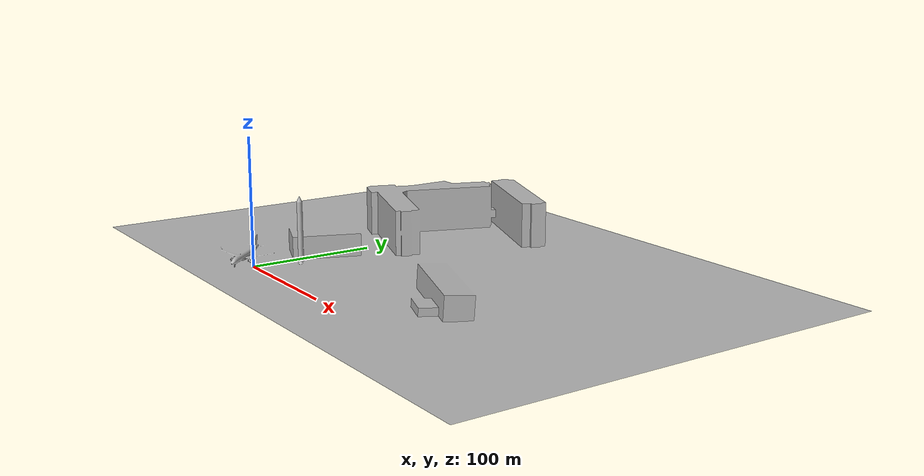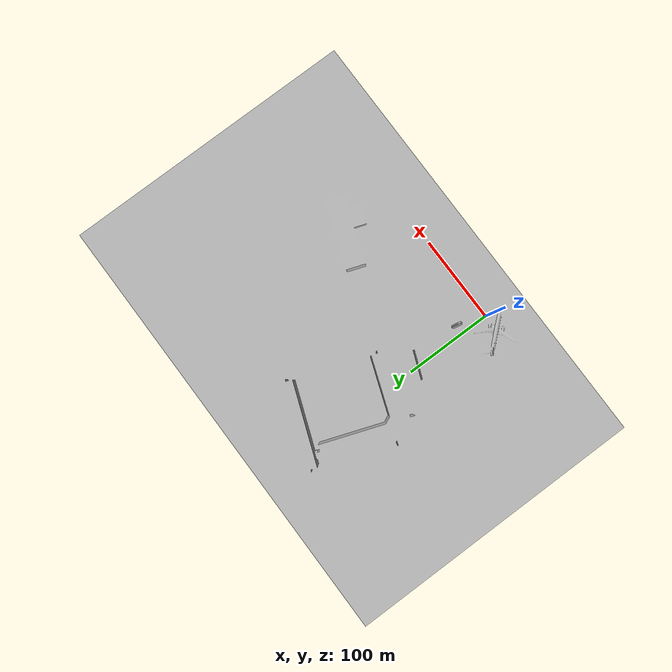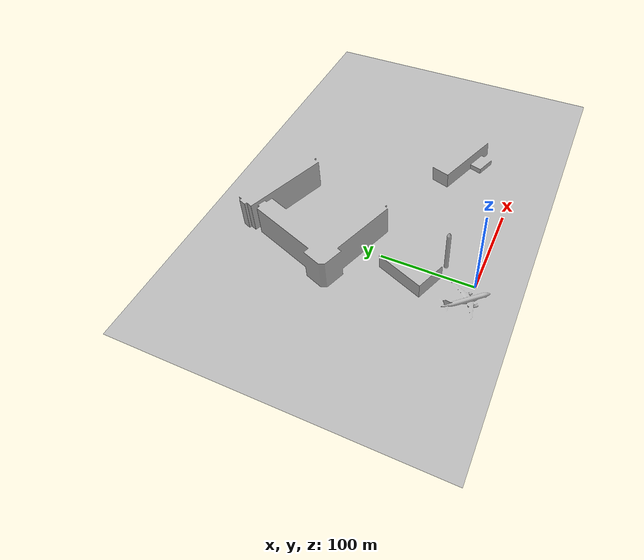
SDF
<?xml version="1.0" encoding="UTF-8"?>
<sdf version="1.9">
  <world name="kau_world">
    <physics type="ode">
      <max_step_size>0.004</max_step_size>
      <real_time_factor>1.0</real_time_factor>
      <real_time_update_rate>250</real_time_update_rate>
    </physics>
    <gravity>0 0 -9.8</gravity>
    <magnetic_field>6e-06 2.3e-05 -4.2e-05</magnetic_field>
    <atmosphere type="adiabatic"/>
    <scene>
      <grid>false</grid>
      <ambient>0.4 0.4 0.4 1</ambient>
      <background>0.7 0.7 0.7 1</background>
      <shadows>true</shadows>
      <sky>
        <clouds>true</clouds>
      </sky>
    </scene>
    <model name="ground_plane">
      <pose>0 0 0 0 0 0</pose>
      <static>true</static>
      <link name="link">
        <collision name="collision">
          <geometry>
            <mesh>
              <scale>0.75 0.75 0.75</scale>
              <uri>model://kau_world/meshes/kau_building_v2.dae</uri>
            </mesh>
          </geometry>
          <surface>
            <friction>
              <ode/>
            </friction>
            <bounce/>
            <contact/>
          </surface>
        </collision>
        <visual name="visual">
          <geometry>
            <mesh>
              <scale>0.75 0.75 0.75</scale>
              <uri>model://kau_world/meshes/kau_building_v2.dae</uri>
            </mesh>
          </geometry>
        </visual>
        <pose>0 0 0 0 -0 0</pose>
        <inertial>
          <pose>0 0 0 0 -0 0</pose>
          <mass>1</mass>
          <inertia>
            <ixx>1</ixx>
            <ixy>0</ixy>
            <ixz>0</ixz>
            <iyy>1</iyy>
            <iyz>0</iyz>
            <izz>1</izz>
          </inertia>
        </inertial>
        <enable_wind>false</enable_wind>
      </link>
      <pose>0 0 0 0 0 0</pose>
      <self_collide>false</self_collide>
    </model>
    <light name="sunUTC" type="directional">
      <pose>0 0 500 0 -0 0</pose>
      <cast_shadows>true</cast_shadows>
      <intensity>1</intensity>
      <direction>0.001 0.625 -0.78</direction>
      <diffuse>0.904 0.904 0.904 1</diffuse>
      <specular>0.271 0.271 0.271 1</specular>
      <attenuation>
        <range>2000</range>
        <linear>0</linear>
        <constant>1</constant>
        <quadratic>0</quadratic>
      </attenuation>
      <spot>
        <inner_angle>0</inner_angle>
        <outer_angle>0</outer_angle>
        <falloff>0</falloff>
      </spot>
    </light>
    <spherical_coordinates>
      <surface_model>EARTH_WGS84</surface_model>
      <world_frame_orientation>ENU</world_frame_orientation>
      <latitude_deg>37.599422</latitude_deg>
      <longitude_deg>126.864716"</longitude_deg>
      <elevation>0</elevation>
    </spherical_coordinates>
  </world>
</sdf>
